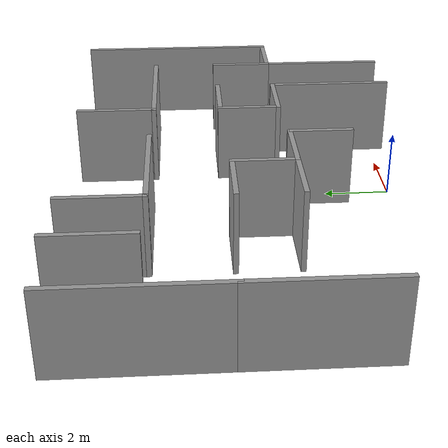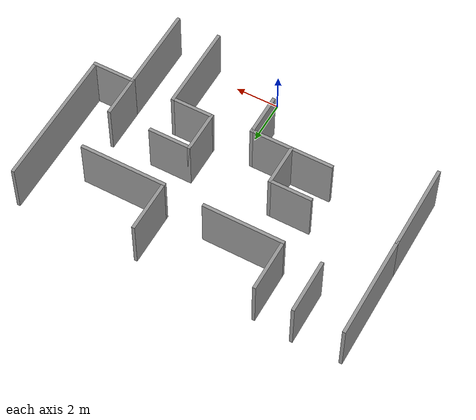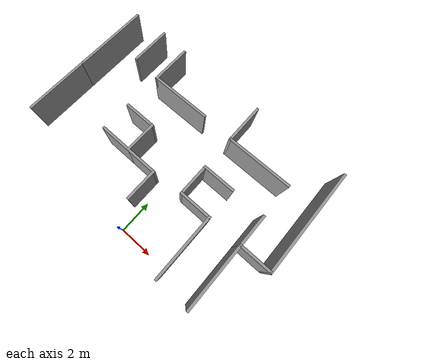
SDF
<sdf version="1.6">
 <model name="maze_new">
  <link name="Wall_104">
   <pose>-5.98541 8.7979 0 0 -0 1.5708</pose>
   <visual name="Wall_104_Visual">
    <pose>0 0 1.25 0 -0 0</pose>
    <geometry><box><size>2.5 0.15 2.5</size></box></geometry>
    <material>
     <script><uri>file://media/materials/scripts/gazebo.material</uri><name>Gazebo/Grey</name></script>
     <ambient>1 1 1 1</ambient>
     <diffuse>0.7 0.7 0.7 1</diffuse>
     <specular>0.01 0.01 0.01 1</specular>
     <emissive>0 0 0 1</emissive>
    </material>
   </visual>
   <collision name="Wall_104_Collision">
    <pose>0 0 1.25 0 -0 0</pose>
    <geometry><box><size>2.5 0.15 2.5</size></box></geometry>
    <surface>
     <friction>
      <ode><mu>1</mu><mu2>1</mu2><fdir1>0 0 0</fdir1><slip1>0</slip1><slip2>0</slip2></ode>
      <torsional>
       <coefficient>1</coefficient>
       <patch_radius>0</patch_radius>
       <surface_radius>0</surface_radius>
       <use_patch_radius>1</use_patch_radius>
       <ode><slip>0</slip></ode>
      </torsional>
     </friction>
     <bounce><restitution_coefficient>0</restitution_coefficient><threshold>1e+06</threshold></bounce>
     <contact>
      <collide_without_contact>0</collide_without_contact>
      <collide_without_contact_bitmask>1</collide_without_contact_bitmask>
      <collide_bitmask>1</collide_bitmask>
      <ode>
       <soft_cfm>0</soft_cfm>
       <soft_erp>0.2</soft_erp>
       <kp>1e+13</kp>
       <kd>1</kd>
       <max_vel>0.01</max_vel>
       <min_depth>0</min_depth>
      </ode>
      <bullet>
       <split_impulse>1</split_impulse>
       <split_impulse_penetration_threshold>-0.01</split_impulse_penetration_threshold>
       <soft_cfm>0</soft_cfm>
       <soft_erp>0.2</soft_erp>
       <kp>1e+13</kp>
       <kd>1</kd>
      </bullet>
     </contact>
    </surface>
   </collision>
  </link>
  <link name="Wall_107">
   <pose>-2.4 7.4771 0 0 -0 0</pose>
   <visual name="Wall_107_Visual">
    <pose>0 0 1.25 0 -0 0</pose>
    <geometry><box><size>3.75 0.15 2.5</size></box></geometry>
    <material>
     <script><uri>file://media/materials/scripts/gazebo.material</uri><name>Gazebo/Grey</name></script>
     <ambient>1 1 1 1</ambient>
     <diffuse>0.7 0.7 0.7 1</diffuse>
     <specular>0.01 0.01 0.01 1</specular>
     <emissive>0 0 0 1</emissive>
    </material>
   </visual>
   <collision name="Wall_107_Collision">
    <pose>0 0 1.25 0 -0 0</pose>
    <geometry><box><size>3.75 0.15 2.5</size></box></geometry>
    <surface>
     <friction>
      <ode><mu>1</mu><mu2>1</mu2><fdir1>0 0 0</fdir1><slip1>0</slip1><slip2>0</slip2></ode>
      <torsional>
       <coefficient>1</coefficient>
       <patch_radius>0</patch_radius>
       <surface_radius>0</surface_radius>
       <use_patch_radius>1</use_patch_radius>
       <ode><slip>0</slip></ode>
      </torsional>
     </friction>
     <bounce><restitution_coefficient>0</restitution_coefficient><threshold>1e+06</threshold></bounce>
     <contact>
      <collide_without_contact>0</collide_without_contact>
      <collide_without_contact_bitmask>1</collide_without_contact_bitmask>
      <collide_bitmask>1</collide_bitmask>
      <ode>
       <soft_cfm>0</soft_cfm>
       <soft_erp>0.2</soft_erp>
       <kp>1e+13</kp>
       <kd>1</kd>
       <max_vel>0.01</max_vel>
       <min_depth>0</min_depth>
      </ode>
      <bullet>
       <split_impulse>1</split_impulse>
       <split_impulse_penetration_threshold>-0.01</split_impulse_penetration_threshold>
       <soft_cfm>0</soft_cfm>
       <soft_erp>0.2</soft_erp>
       <kp>1e+13</kp>
       <kd>1</kd>
      </bullet>
     </contact>
    </surface>
   </collision>
  </link>
  <link name="Wall_110">
   <pose>-4.2 8.6521 0 0 -0 1.5708</pose>
   <visual name="Wall_110_Visual">
    <pose>0 0 1.25 0 -0 0</pose>
    <geometry><box><size>2.5 0.15 2.5</size></box></geometry>
    <material>
     <script><uri>file://media/materials/scripts/gazebo.material</uri><name>Gazebo/Grey</name></script>
     <ambient>1 1 1 1</ambient>
     <diffuse>0.7 0.7 0.7 1</diffuse>
     <specular>0.01 0.01 0.01 1</specular>
     <emissive>0 0 0 1</emissive>
    </material>
   </visual>
   <collision name="Wall_110_Collision">
    <pose>0 0 1.25 0 -0 0</pose>
    <geometry><box><size>2.5 0.15 2.5</size></box></geometry>
    <surface>
     <friction>
      <ode><mu>1</mu><mu2>1</mu2><fdir1>0 0 0</fdir1><slip1>0</slip1><slip2>0</slip2></ode>
      <torsional>
       <coefficient>1</coefficient>
       <patch_radius>0</patch_radius>
       <surface_radius>0</surface_radius>
       <use_patch_radius>1</use_patch_radius>
       <ode><slip>0</slip></ode>
      </torsional>
     </friction>
     <bounce><restitution_coefficient>0</restitution_coefficient><threshold>1e+06</threshold></bounce>
     <contact>
      <collide_without_contact>0</collide_without_contact>
      <collide_without_contact_bitmask>1</collide_without_contact_bitmask>
      <collide_bitmask>1</collide_bitmask>
      <ode>
       <soft_cfm>0</soft_cfm>
       <soft_erp>0.2</soft_erp>
       <kp>1e+13</kp>
       <kd>1</kd>
       <max_vel>0.01</max_vel>
       <min_depth>0</min_depth>
      </ode>
      <bullet>
       <split_impulse>1</split_impulse>
       <split_impulse_penetration_threshold>-0.01</split_impulse_penetration_threshold>
       <soft_cfm>0</soft_cfm>
       <soft_erp>0.2</soft_erp>
       <kp>1e+13</kp>
       <kd>1</kd>
      </bullet>
     </contact>
    </surface>
   </collision>
  </link>
  <link name="Wall_113">
   <pose>3.275 7.3771 0 0 -0 0</pose>
   <visual name="Wall_113_Visual">
    <pose>0 0 1.25 0 -0 0</pose>
    <geometry><box><size>4 0.15 2.5</size></box></geometry>
    <material>
     <script><uri>file://media/materials/scripts/gazebo.material</uri><name>Gazebo/Grey</name></script>
     <ambient>1 1 1 1</ambient>
     <diffuse>0.7 0.7 0.7 1</diffuse>
     <specular>0.01 0.01 0.01 1</specular>
     <emissive>0 0 0 1</emissive>
    </material>
   </visual>
   <collision name="Wall_113_Collision">
    <pose>0 0 1.25 0 -0 0</pose>
    <geometry><box><size>4 0.15 2.5</size></box></geometry>
    <surface>
     <friction>
      <ode><mu>1</mu><mu2>1</mu2><fdir1>0 0 0</fdir1><slip1>0</slip1><slip2>0</slip2></ode>
      <torsional>
       <coefficient>1</coefficient>
       <patch_radius>0</patch_radius>
       <surface_radius>0</surface_radius>
       <use_patch_radius>1</use_patch_radius>
       <ode><slip>0</slip></ode>
      </torsional>
     </friction>
     <bounce><restitution_coefficient>0</restitution_coefficient><threshold>1e+06</threshold></bounce>
     <contact>
      <collide_without_contact>0</collide_without_contact>
      <collide_without_contact_bitmask>1</collide_without_contact_bitmask>
      <collide_bitmask>1</collide_bitmask>
      <ode>
       <soft_cfm>0</soft_cfm>
       <soft_erp>0.2</soft_erp>
       <kp>1e+13</kp>
       <kd>1</kd>
       <max_vel>0.01</max_vel>
       <min_depth>0</min_depth>
      </ode>
      <bullet>
       <split_impulse>1</split_impulse>
       <split_impulse_penetration_threshold>-0.01</split_impulse_penetration_threshold>
       <soft_cfm>0</soft_cfm>
       <soft_erp>0.2</soft_erp>
       <kp>1e+13</kp>
       <kd>1</kd>
      </bullet>
     </contact>
    </surface>
   </collision>
  </link>
  <link name="Wall_115">
   <pose>1.35 8.5521 0 0 -0 1.5708</pose>
   <visual name="Wall_115_Visual">
    <pose>0 0 1.25 0 -0 0</pose>
    <geometry><box><size>2.5 0.15 2.5</size></box></geometry>
    <material>
     <script><uri>file://media/materials/scripts/gazebo.material</uri><name>Gazebo/Grey</name></script>
     <ambient>1 1 1 1</ambient>
     <diffuse>0.7 0.7 0.7 1</diffuse>
     <specular>0.01 0.01 0.01 1</specular>
     <emissive>0 0 0 1</emissive>
    </material>
   </visual>
   <collision name="Wall_115_Collision">
    <pose>0 0 1.25 0 -0 0</pose>
    <geometry><box><size>2.5 0.15 2.5</size></box></geometry>
    <surface>
     <friction>
      <ode><mu>1</mu><mu2>1</mu2><fdir1>0 0 0</fdir1><slip1>0</slip1><slip2>0</slip2></ode>
      <torsional>
       <coefficient>1</coefficient>
       <patch_radius>0</patch_radius>
       <surface_radius>0</surface_radius>
       <use_patch_radius>1</use_patch_radius>
       <ode><slip>0</slip></ode>
      </torsional>
     </friction>
     <bounce><restitution_coefficient>0</restitution_coefficient><threshold>1e+06</threshold></bounce>
     <contact>
      <collide_without_contact>0</collide_without_contact>
      <collide_without_contact_bitmask>1</collide_without_contact_bitmask>
      <collide_bitmask>1</collide_bitmask>
      <ode>
       <soft_cfm>0</soft_cfm>
       <soft_erp>0.2</soft_erp>
       <kp>1e+13</kp>
       <kd>1</kd>
       <max_vel>0.01</max_vel>
       <min_depth>0</min_depth>
      </ode>
      <bullet>
       <split_impulse>1</split_impulse>
       <split_impulse_penetration_threshold>-0.01</split_impulse_penetration_threshold>
       <soft_cfm>0</soft_cfm>
       <soft_erp>0.2</soft_erp>
       <kp>1e+13</kp>
       <kd>1</kd>
      </bullet>
     </contact>
    </surface>
   </collision>
  </link>
  <link name="Wall_118">
   <pose>5.2 4.3521 0 0 0 -1.5708</pose>
   <visual name="Wall_118_Visual">
    <pose>0 0 1.25 0 -0 0</pose>
    <geometry><box><size>2 0.15 2.5</size></box></geometry>
    <material>
     <script><uri>file://media/materials/scripts/gazebo.material</uri><name>Gazebo/Grey</name></script>
     <ambient>1 1 1 1</ambient>
     <diffuse>0.7 0.7 0.7 1</diffuse>
     <specular>0.01 0.01 0.01 1</specular>
     <emissive>0 0 0 1</emissive>
    </material>
   </visual>
   <collision name="Wall_118_Collision">
    <pose>0 0 1.25 0 -0 0</pose>
    <geometry><box><size>2 0.15 2.5</size></box></geometry>
    <surface>
     <friction>
      <ode><mu>1</mu><mu2>1</mu2><fdir1>0 0 0</fdir1><slip1>0</slip1><slip2>0</slip2></ode>
      <torsional>
       <coefficient>1</coefficient>
       <patch_radius>0</patch_radius>
       <surface_radius>0</surface_radius>
       <use_patch_radius>1</use_patch_radius>
       <ode><slip>0</slip></ode>
      </torsional>
     </friction>
     <bounce><restitution_coefficient>0</restitution_coefficient><threshold>1e+06</threshold></bounce>
     <contact>
      <collide_without_contact>0</collide_without_contact>
      <collide_without_contact_bitmask>1</collide_without_contact_bitmask>
      <collide_bitmask>1</collide_bitmask>
      <ode>
       <soft_cfm>0</soft_cfm>
       <soft_erp>0.2</soft_erp>
       <kp>1e+13</kp>
       <kd>1</kd>
       <max_vel>0.01</max_vel>
       <min_depth>0</min_depth>
      </ode>
      <bullet>
       <split_impulse>1</split_impulse>
       <split_impulse_penetration_threshold>-0.01</split_impulse_penetration_threshold>
       <soft_cfm>0</soft_cfm>
       <soft_erp>0.2</soft_erp>
       <kp>1e+13</kp>
       <kd>1</kd>
      </bullet>
     </contact>
    </surface>
   </collision>
  </link>
  <link name="Wall_119">
   <pose>6.125 3.4271 0 0 -0 0</pose>
   <visual name="Wall_119_Visual">
    <pose>0 0 1.25 0 -0 0</pose>
    <geometry><box><size>2 0.15 2.5</size></box></geometry>
    <material>
     <script><uri>file://media/materials/scripts/gazebo.material</uri><name>Gazebo/Grey</name></script>
     <ambient>1 1 1 1</ambient>
     <diffuse>0.7 0.7 0.7 1</diffuse>
     <specular>0.01 0.01 0.01 1</specular>
     <emissive>0 0 0 1</emissive>
    </material>
   </visual>
   <collision name="Wall_119_Collision">
    <pose>0 0 1.25 0 -0 0</pose>
    <geometry><box><size>2 0.15 2.5</size></box></geometry>
    <surface>
     <friction>
      <ode><mu>1</mu><mu2>1</mu2><fdir1>0 0 0</fdir1><slip1>0</slip1><slip2>0</slip2></ode>
      <torsional>
       <coefficient>1</coefficient>
       <patch_radius>0</patch_radius>
       <surface_radius>0</surface_radius>
       <use_patch_radius>1</use_patch_radius>
       <ode><slip>0</slip></ode>
      </torsional>
     </friction>
     <bounce><restitution_coefficient>0</restitution_coefficient><threshold>1e+06</threshold></bounce>
     <contact>
      <collide_without_contact>0</collide_without_contact>
      <collide_without_contact_bitmask>1</collide_without_contact_bitmask>
      <collide_bitmask>1</collide_bitmask>
      <ode>
       <soft_cfm>0</soft_cfm>
       <soft_erp>0.2</soft_erp>
       <kp>1e+13</kp>
       <kd>1</kd>
       <max_vel>0.01</max_vel>
       <min_depth>0</min_depth>
      </ode>
      <bullet>
       <split_impulse>1</split_impulse>
       <split_impulse_penetration_threshold>-0.01</split_impulse_penetration_threshold>
       <soft_cfm>0</soft_cfm>
       <soft_erp>0.2</soft_erp>
       <kp>1e+13</kp>
       <kd>1</kd>
      </bullet>
     </contact>
    </surface>
   </collision>
  </link>
  <link name="Wall_120">
   <pose>7.05 6.6021 0 0 -0 1.5708</pose>
   <visual name="Wall_120_Visual">
    <pose>0 0 1.25 0 -0 0</pose>
    <geometry><box><size>6.5 0.15 2.5</size></box></geometry>
    <material>
     <script><uri>file://media/materials/scripts/gazebo.material</uri><name>Gazebo/Grey</name></script>
     <ambient>1 1 1 1</ambient>
     <diffuse>0.7 0.7 0.7 1</diffuse>
     <specular>0.01 0.01 0.01 1</specular>
     <emissive>0 0 0 1</emissive>
    </material>
   </visual>
   <collision name="Wall_120_Collision">
    <pose>0 0 1.25 0 -0 0</pose>
    <geometry><box><size>6.5 0.15 2.5</size></box></geometry>
    <surface>
     <friction>
      <ode><mu>1</mu><mu2>1</mu2><fdir1>0 0 0</fdir1><slip1>0</slip1><slip2>0</slip2></ode>
      <torsional>
       <coefficient>1</coefficient>
       <patch_radius>0</patch_radius>
       <surface_radius>0</surface_radius>
       <use_patch_radius>1</use_patch_radius>
       <ode><slip>0</slip></ode>
      </torsional>
     </friction>
     <bounce><restitution_coefficient>0</restitution_coefficient><threshold>1e+06</threshold></bounce>
     <contact>
      <collide_without_contact>0</collide_without_contact>
      <collide_without_contact_bitmask>1</collide_without_contact_bitmask>
      <collide_bitmask>1</collide_bitmask>
      <ode>
       <soft_cfm>0</soft_cfm>
       <soft_erp>0.2</soft_erp>
       <kp>1e+13</kp>
       <kd>1</kd>
       <max_vel>0.01</max_vel>
       <min_depth>0</min_depth>
      </ode>
      <bullet>
       <split_impulse>1</split_impulse>
       <split_impulse_penetration_threshold>-0.01</split_impulse_penetration_threshold>
       <soft_cfm>0</soft_cfm>
       <soft_erp>0.2</soft_erp>
       <kp>1e+13</kp>
       <kd>1</kd>
      </bullet>
     </contact>
    </surface>
   </collision>
  </link>
  <link name="Wall_122">
   <pose>5.2 1.5021 0 0 0 -1.5708</pose>
   <visual name="Wall_122_Visual">
    <pose>0 0 1.25 0 -0 0</pose>
    <geometry><box><size>4 0.15 2.5</size></box></geometry>
    <material>
     <script><uri>file://media/materials/scripts/gazebo.material</uri><name>Gazebo/Grey</name></script>
     <ambient>1 1 1 1</ambient>
     <diffuse>0.7 0.7 0.7 1</diffuse>
     <specular>0.01 0.01 0.01 1</specular>
     <emissive>0 0 0 1</emissive>
    </material>
   </visual>
   <collision name="Wall_122_Collision">
    <pose>0 0 1.25 0 -0 0</pose>
    <geometry><box><size>4 0.15 2.5</size></box></geometry>
    <surface>
     <friction>
      <ode><mu>1</mu><mu2>1</mu2><fdir1>0 0 0</fdir1><slip1>0</slip1><slip2>0</slip2></ode>
      <torsional>
       <coefficient>1</coefficient>
       <patch_radius>0</patch_radius>
       <surface_radius>0</surface_radius>
       <use_patch_radius>1</use_patch_radius>
       <ode><slip>0</slip></ode>
      </torsional>
     </friction>
     <bounce><restitution_coefficient>0</restitution_coefficient><threshold>1e+06</threshold></bounce>
     <contact>
      <collide_without_contact>0</collide_without_contact>
      <collide_without_contact_bitmask>1</collide_without_contact_bitmask>
      <collide_bitmask>1</collide_bitmask>
      <ode>
       <soft_cfm>0</soft_cfm>
       <soft_erp>0.2</soft_erp>
       <kp>1e+13</kp>
       <kd>1</kd>
       <max_vel>0.01</max_vel>
       <min_depth>0</min_depth>
      </ode>
      <bullet>
       <split_impulse>1</split_impulse>
       <split_impulse_penetration_threshold>-0.01</split_impulse_penetration_threshold>
       <soft_cfm>0</soft_cfm>
       <soft_erp>0.2</soft_erp>
       <kp>1e+13</kp>
       <kd>1</kd>
      </bullet>
     </contact>
    </surface>
   </collision>
  </link>
  <link name="Wall_78">
   <pose>-0.5 2.3521 0 0 -0 1.5708</pose>
   <visual name="Wall_78_Visual">
    <pose>0 0 1.25 0 -0 0</pose>
    <geometry><box><size>2 0.15 2.5</size></box></geometry>
    <material>
     <script><uri>file://media/materials/scripts/gazebo.material</uri><name>Gazebo/Grey</name></script>
     <ambient>1 1 1 1</ambient>
     <diffuse>0.7 0.7 0.7 1</diffuse>
     <specular>0.01 0.01 0.01 1</specular>
     <emissive>0 0 0 1</emissive>
    </material>
   </visual>
   <collision name="Wall_78_Collision">
    <pose>0 0 1.25 0 -0 0</pose>
    <geometry><box><size>2 0.15 2.5</size></box></geometry>
    <surface>
     <friction>
      <ode><mu>1</mu><mu2>1</mu2><fdir1>0 0 0</fdir1><slip1>0</slip1><slip2>0</slip2></ode>
      <torsional>
       <coefficient>1</coefficient>
       <patch_radius>0</patch_radius>
       <surface_radius>0</surface_radius>
       <use_patch_radius>1</use_patch_radius>
       <ode><slip>0</slip></ode>
      </torsional>
     </friction>
     <bounce><restitution_coefficient>0</restitution_coefficient><threshold>1e+06</threshold></bounce>
     <contact>
      <collide_without_contact>0</collide_without_contact>
      <collide_without_contact_bitmask>1</collide_without_contact_bitmask>
      <collide_bitmask>1</collide_bitmask>
      <ode>
       <soft_cfm>0</soft_cfm>
       <soft_erp>0.2</soft_erp>
       <kp>1e+13</kp>
       <kd>1</kd>
       <max_vel>0.01</max_vel>
       <min_depth>0</min_depth>
      </ode>
      <bullet>
       <split_impulse>1</split_impulse>
       <split_impulse_penetration_threshold>-0.01</split_impulse_penetration_threshold>
       <soft_cfm>0</soft_cfm>
       <soft_erp>0.2</soft_erp>
       <kp>1e+13</kp>
       <kd>1</kd>
      </bullet>
     </contact>
    </surface>
   </collision>
  </link>
  <link name="Wall_79">
   <pose>-1.425 3.2771 0 0 -0 3.14159</pose>
   <visual name="Wall_79_Visual">
    <pose>0 0 1.25 0 -0 0</pose>
    <geometry><box><size>2 0.15 2.5</size></box></geometry>
    <material>
     <script><uri>file://media/materials/scripts/gazebo.material</uri><name>Gazebo/Grey</name></script>
     <ambient>1 1 1 1</ambient>
     <diffuse>0.7 0.7 0.7 1</diffuse>
     <specular>0.01 0.01 0.01 1</specular>
     <emissive>0 0 0 1</emissive>
    </material>
   </visual>
   <collision name="Wall_79_Collision">
    <pose>0 0 1.25 0 -0 0</pose>
    <geometry><box><size>2 0.15 2.5</size></box></geometry>
    <surface>
     <friction>
      <ode><mu>1</mu><mu2>1</mu2><fdir1>0 0 0</fdir1><slip1>0</slip1><slip2>0</slip2></ode>
      <torsional>
       <coefficient>1</coefficient>
       <patch_radius>0</patch_radius>
       <surface_radius>0</surface_radius>
       <use_patch_radius>1</use_patch_radius>
       <ode><slip>0</slip></ode>
      </torsional>
     </friction>
     <bounce><restitution_coefficient>0</restitution_coefficient><threshold>1e+06</threshold></bounce>
     <contact>
      <collide_without_contact>0</collide_without_contact>
      <collide_without_contact_bitmask>1</collide_without_contact_bitmask>
      <collide_bitmask>1</collide_bitmask>
      <ode>
       <soft_cfm>0</soft_cfm>
       <soft_erp>0.2</soft_erp>
       <kp>1e+13</kp>
       <kd>1</kd>
       <max_vel>0.01</max_vel>
       <min_depth>0</min_depth>
      </ode>
      <bullet>
       <split_impulse>1</split_impulse>
       <split_impulse_penetration_threshold>-0.01</split_impulse_penetration_threshold>
       <soft_cfm>0</soft_cfm>
       <soft_erp>0.2</soft_erp>
       <kp>1e+13</kp>
       <kd>1</kd>
      </bullet>
     </contact>
    </surface>
   </collision>
  </link>
  <link name="Wall_80">
   <pose>-2.35 4.2021 0 0 -0 1.5708</pose>
   <visual name="Wall_80_Visual">
    <pose>0 0 1.25 0 -0 0</pose>
    <geometry><box><size>2 0.15 2.5</size></box></geometry>
    <material>
     <script><uri>file://media/materials/scripts/gazebo.material</uri><name>Gazebo/Grey</name></script>
     <ambient>1 1 1 1</ambient>
     <diffuse>0.7 0.7 0.7 1</diffuse>
     <specular>0.01 0.01 0.01 1</specular>
     <emissive>0 0 0 1</emissive>
    </material>
   </visual>
   <collision name="Wall_80_Collision">
    <pose>0 0 1.25 0 -0 0</pose>
    <geometry><box><size>2 0.15 2.5</size></box></geometry>
    <surface>
     <friction>
      <ode><mu>1</mu><mu2>1</mu2><fdir1>0 0 0</fdir1><slip1>0</slip1><slip2>0</slip2></ode>
      <torsional>
       <coefficient>1</coefficient>
       <patch_radius>0</patch_radius>
       <surface_radius>0</surface_radius>
       <use_patch_radius>1</use_patch_radius>
       <ode><slip>0</slip></ode>
      </torsional>
     </friction>
     <bounce><restitution_coefficient>0</restitution_coefficient><threshold>1e+06</threshold></bounce>
     <contact>
      <collide_without_contact>0</collide_without_contact>
      <collide_without_contact_bitmask>1</collide_without_contact_bitmask>
      <collide_bitmask>1</collide_bitmask>
      <ode>
       <soft_cfm>0</soft_cfm>
       <soft_erp>0.2</soft_erp>
       <kp>1e+13</kp>
       <kd>1</kd>
       <max_vel>0.01</max_vel>
       <min_depth>0</min_depth>
      </ode>
      <bullet>
       <split_impulse>1</split_impulse>
       <split_impulse_penetration_threshold>-0.01</split_impulse_penetration_threshold>
       <soft_cfm>0</soft_cfm>
       <soft_erp>0.2</soft_erp>
       <kp>1e+13</kp>
       <kd>1</kd>
      </bullet>
     </contact>
    </surface>
   </collision>
  </link>
  <link name="Wall_81">
   <pose>-3.275 5.1271 0 0 -0 3.14159</pose>
   <visual name="Wall_81_Visual">
    <pose>0 0 1.25 0 -0 0</pose>
    <geometry><box><size>2 0.15 2.5</size></box></geometry>
    <material>
     <script><uri>file://media/materials/scripts/gazebo.material</uri><name>Gazebo/Grey</name></script>
     <ambient>1 1 1 1</ambient>
     <diffuse>0.7 0.7 0.7 1</diffuse>
     <specular>0.01 0.01 0.01 1</specular>
     <emissive>0 0 0 1</emissive>
    </material>
   </visual>
   <collision name="Wall_81_Collision">
    <pose>0 0 1.25 0 -0 0</pose>
    <geometry><box><size>2 0.15 2.5</size></box></geometry>
    <surface>
     <friction>
      <ode><mu>1</mu><mu2>1</mu2><fdir1>0 0 0</fdir1><slip1>0</slip1><slip2>0</slip2></ode>
      <torsional>
       <coefficient>1</coefficient>
       <patch_radius>0</patch_radius>
       <surface_radius>0</surface_radius>
       <use_patch_radius>1</use_patch_radius>
       <ode><slip>0</slip></ode>
      </torsional>
     </friction>
     <bounce><restitution_coefficient>0</restitution_coefficient><threshold>1e+06</threshold></bounce>
     <contact>
      <collide_without_contact>0</collide_without_contact>
      <collide_without_contact_bitmask>1</collide_without_contact_bitmask>
      <collide_bitmask>1</collide_bitmask>
      <ode>
       <soft_cfm>0</soft_cfm>
       <soft_erp>0.2</soft_erp>
       <kp>1e+13</kp>
       <kd>1</kd>
       <max_vel>0.01</max_vel>
       <min_depth>0</min_depth>
      </ode>
      <bullet>
       <split_impulse>1</split_impulse>
       <split_impulse_penetration_threshold>-0.01</split_impulse_penetration_threshold>
       <soft_cfm>0</soft_cfm>
       <soft_erp>0.2</soft_erp>
       <kp>1e+13</kp>
       <kd>1</kd>
      </bullet>
     </contact>
    </surface>
   </collision>
  </link>
  <link name="Wall_83">
   <pose>-3.275 3.2771 0 0 -0 3.14159</pose>
   <visual name="Wall_83_Visual">
    <pose>0 0 1.25 0 -0 0</pose>
    <geometry><box><size>2 0.15 2.5</size></box></geometry>
    <material>
     <script><uri>file://media/materials/scripts/gazebo.material</uri><name>Gazebo/Grey</name></script>
     <ambient>1 1 1 1</ambient>
     <diffuse>0.7 0.7 0.7 1</diffuse>
     <specular>0.01 0.01 0.01 1</specular>
     <emissive>0 0 0 1</emissive>
    </material>
   </visual>
   <collision name="Wall_83_Collision">
    <pose>0 0 1.25 0 -0 0</pose>
    <geometry><box><size>2 0.15 2.5</size></box></geometry>
    <surface>
     <friction>
      <ode><mu>1</mu><mu2>1</mu2><fdir1>0 0 0</fdir1><slip1>0</slip1><slip2>0</slip2></ode>
      <torsional>
       <coefficient>1</coefficient>
       <patch_radius>0</patch_radius>
       <surface_radius>0</surface_radius>
       <use_patch_radius>1</use_patch_radius>
       <ode><slip>0</slip></ode>
      </torsional>
     </friction>
     <bounce><restitution_coefficient>0</restitution_coefficient><threshold>1e+06</threshold></bounce>
     <contact>
      <collide_without_contact>0</collide_without_contact>
      <collide_without_contact_bitmask>1</collide_without_contact_bitmask>
      <collide_bitmask>1</collide_bitmask>
      <ode>
       <soft_cfm>0</soft_cfm>
       <soft_erp>0.2</soft_erp>
       <kp>1e+13</kp>
       <kd>1</kd>
       <max_vel>0.01</max_vel>
       <min_depth>0</min_depth>
      </ode>
      <bullet>
       <split_impulse>1</split_impulse>
       <split_impulse_penetration_threshold>-0.01</split_impulse_penetration_threshold>
       <soft_cfm>0</soft_cfm>
       <soft_erp>0.2</soft_erp>
       <kp>1e+13</kp>
       <kd>1</kd>
      </bullet>
     </contact>
    </surface>
   </collision>
  </link>
  <link name="Wall_87">
   <pose>3.2 1.5021 0 0 -0 1.5708</pose>
   <visual name="Wall_87_Visual">
    <pose>0 0 1.25 0 -0 0</pose>
    <geometry><box><size>4 0.15 2.5</size></box></geometry>
    <material>
     <script><uri>file://media/materials/scripts/gazebo.material</uri><name>Gazebo/Grey</name></script>
     <ambient>1 1 1 1</ambient>
     <diffuse>0.7 0.7 0.7 1</diffuse>
     <specular>0.01 0.01 0.01 1</specular>
     <emissive>0 0 0 1</emissive>
    </material>
   </visual>
   <collision name="Wall_87_Collision">
    <pose>0 0 1.25 0 -0 0</pose>
    <geometry><box><size>4 0.15 2.5</size></box></geometry>
    <surface>
     <friction>
      <ode><mu>1</mu><mu2>1</mu2><fdir1>0 0 0</fdir1><slip1>0</slip1><slip2>0</slip2></ode>
      <torsional>
       <coefficient>1</coefficient>
       <patch_radius>0</patch_radius>
       <surface_radius>0</surface_radius>
       <use_patch_radius>1</use_patch_radius>
       <ode><slip>0</slip></ode>
      </torsional>
     </friction>
     <bounce><restitution_coefficient>0</restitution_coefficient><threshold>1e+06</threshold></bounce>
     <contact>
      <collide_without_contact>0</collide_without_contact>
      <collide_without_contact_bitmask>1</collide_without_contact_bitmask>
      <collide_bitmask>1</collide_bitmask>
      <ode>
       <soft_cfm>0</soft_cfm>
       <soft_erp>0.2</soft_erp>
       <kp>1e+13</kp>
       <kd>1</kd>
       <max_vel>0.01</max_vel>
       <min_depth>0</min_depth>
      </ode>
      <bullet>
       <split_impulse>1</split_impulse>
       <split_impulse_penetration_threshold>-0.01</split_impulse_penetration_threshold>
       <soft_cfm>0</soft_cfm>
       <soft_erp>0.2</soft_erp>
       <kp>1e+13</kp>
       <kd>1</kd>
      </bullet>
     </contact>
    </surface>
   </collision>
  </link>
  <link name="Wall_88">
   <pose>2.275 3.4271 0 0 -0 3.14159</pose>
   <visual name="Wall_88_Visual">
    <pose>0 0 1.25 0 -0 0</pose>
    <geometry><box><size>2 0.15 2.5</size></box></geometry>
    <material>
     <script><uri>file://media/materials/scripts/gazebo.material</uri><name>Gazebo/Grey</name></script>
     <ambient>1 1 1 1</ambient>
     <diffuse>0.7 0.7 0.7 1</diffuse>
     <specular>0.01 0.01 0.01 1</specular>
     <emissive>0 0 0 1</emissive>
    </material>
   </visual>
   <collision name="Wall_88_Collision">
    <pose>0 0 1.25 0 -0 0</pose>
    <geometry><box><size>2 0.15 2.5</size></box></geometry>
    <surface>
     <friction>
      <ode><mu>1</mu><mu2>1</mu2><fdir1>0 0 0</fdir1><slip1>0</slip1><slip2>0</slip2></ode>
      <torsional>
       <coefficient>1</coefficient>
       <patch_radius>0</patch_radius>
       <surface_radius>0</surface_radius>
       <use_patch_radius>1</use_patch_radius>
       <ode><slip>0</slip></ode>
      </torsional>
     </friction>
     <bounce><restitution_coefficient>0</restitution_coefficient><threshold>1e+06</threshold></bounce>
     <contact>
      <collide_without_contact>0</collide_without_contact>
      <collide_without_contact_bitmask>1</collide_without_contact_bitmask>
      <collide_bitmask>1</collide_bitmask>
      <ode>
       <soft_cfm>0</soft_cfm>
       <soft_erp>0.2</soft_erp>
       <kp>1e+13</kp>
       <kd>1</kd>
       <max_vel>0.01</max_vel>
       <min_depth>0</min_depth>
      </ode>
      <bullet>
       <split_impulse>1</split_impulse>
       <split_impulse_penetration_threshold>-0.01</split_impulse_penetration_threshold>
       <soft_cfm>0</soft_cfm>
       <soft_erp>0.2</soft_erp>
       <kp>1e+13</kp>
       <kd>1</kd>
      </bullet>
     </contact>
    </surface>
   </collision>
  </link>
  <link name="Wall_89">
   <pose>1.35 4.3521 0 0 -0 1.5708</pose>
   <visual name="Wall_89_Visual">
    <pose>0 0 1.25 0 -0 0</pose>
    <geometry><box><size>2 0.15 2.5</size></box></geometry>
    <material>
     <script><uri>file://media/materials/scripts/gazebo.material</uri><name>Gazebo/Grey</name></script>
     <ambient>1 1 1 1</ambient>
     <diffuse>0.7 0.7 0.7 1</diffuse>
     <specular>0.01 0.01 0.01 1</specular>
     <emissive>0 0 0 1</emissive>
    </material>
   </visual>
   <collision name="Wall_89_Collision">
    <pose>0 0 1.25 0 -0 0</pose>
    <geometry><box><size>2 0.15 2.5</size></box></geometry>
    <surface>
     <friction>
      <ode><mu>1</mu><mu2>1</mu2><fdir1>0 0 0</fdir1><slip1>0</slip1><slip2>0</slip2></ode>
      <torsional>
       <coefficient>1</coefficient>
       <patch_radius>0</patch_radius>
       <surface_radius>0</surface_radius>
       <use_patch_radius>1</use_patch_radius>
       <ode><slip>0</slip></ode>
      </torsional>
     </friction>
     <bounce><restitution_coefficient>0</restitution_coefficient><threshold>1e+06</threshold></bounce>
     <contact>
      <collide_without_contact>0</collide_without_contact>
      <collide_without_contact_bitmask>1</collide_without_contact_bitmask>
      <collide_bitmask>1</collide_bitmask>
      <ode>
       <soft_cfm>0</soft_cfm>
       <soft_erp>0.2</soft_erp>
       <kp>1e+13</kp>
       <kd>1</kd>
       <max_vel>0.01</max_vel>
       <min_depth>0</min_depth>
      </ode>
      <bullet>
       <split_impulse>1</split_impulse>
       <split_impulse_penetration_threshold>-0.01</split_impulse_penetration_threshold>
       <soft_cfm>0</soft_cfm>
       <soft_erp>0.2</soft_erp>
       <kp>1e+13</kp>
       <kd>1</kd>
      </bullet>
     </contact>
    </surface>
   </collision>
  </link>
  <link name="Wall_90">
   <pose>2.275 5.2771 0 0 -0 0</pose>
   <visual name="Wall_90_Visual">
    <pose>0 0 1.25 0 -0 0</pose>
    <geometry><box><size>2 0.15 2.5</size></box></geometry>
    <material>
     <script><uri>file://media/materials/scripts/gazebo.material</uri><name>Gazebo/Grey</name></script>
     <ambient>1 1 1 1</ambient>
     <diffuse>0.7 0.7 0.7 1</diffuse>
     <specular>0.01 0.01 0.01 1</specular>
     <emissive>0 0 0 1</emissive>
    </material>
   </visual>
   <collision name="Wall_90_Collision">
    <pose>0 0 1.25 0 -0 0</pose>
    <geometry><box><size>2 0.15 2.5</size></box></geometry>
    <surface>
     <friction>
      <ode><mu>1</mu><mu2>1</mu2><fdir1>0 0 0</fdir1><slip1>0</slip1><slip2>0</slip2></ode>
      <torsional>
       <coefficient>1</coefficient>
       <patch_radius>0</patch_radius>
       <surface_radius>0</surface_radius>
       <use_patch_radius>1</use_patch_radius>
       <ode><slip>0</slip></ode>
      </torsional>
     </friction>
     <bounce><restitution_coefficient>0</restitution_coefficient><threshold>1e+06</threshold></bounce>
     <contact>
      <collide_without_contact>0</collide_without_contact>
      <collide_without_contact_bitmask>1</collide_without_contact_bitmask>
      <collide_bitmask>1</collide_bitmask>
      <ode>
       <soft_cfm>0</soft_cfm>
       <soft_erp>0.2</soft_erp>
       <kp>1e+13</kp>
       <kd>1</kd>
       <max_vel>0.01</max_vel>
       <min_depth>0</min_depth>
      </ode>
      <bullet>
       <split_impulse>1</split_impulse>
       <split_impulse_penetration_threshold>-0.01</split_impulse_penetration_threshold>
       <soft_cfm>0</soft_cfm>
       <soft_erp>0.2</soft_erp>
       <kp>1e+13</kp>
       <kd>1</kd>
      </bullet>
     </contact>
    </surface>
   </collision>
  </link>
  <link name="Wall_96">
   <pose>-8.15 3.3521 0 0 -0 1.5708</pose>
   <visual name="Wall_96_Visual">
    <pose>0 0 1.25 0 -0 0</pose>
    <geometry><box><size>4 0.15 2.5</size></box></geometry>
    <material>
     <script><uri>file://media/materials/scripts/gazebo.material</uri><name>Gazebo/Grey</name></script>
     <ambient>1 1 1 1</ambient>
     <diffuse>0.7 0.7 0.7 1</diffuse>
     <specular>0.01 0.01 0.01 1</specular>
     <emissive>0 0 0 1</emissive>
    </material>
   </visual>
   <collision name="Wall_96_Collision">
    <pose>0 0 1.25 0 -0 0</pose>
    <geometry><box><size>4 0.15 2.5</size></box></geometry>
    <surface>
     <friction>
      <ode><mu>1</mu><mu2>1</mu2><fdir1>0 0 0</fdir1><slip1>0</slip1><slip2>0</slip2></ode>
      <torsional>
       <coefficient>1</coefficient>
       <patch_radius>0</patch_radius>
       <surface_radius>0</surface_radius>
       <use_patch_radius>1</use_patch_radius>
       <ode><slip>0</slip></ode>
      </torsional>
     </friction>
     <bounce><restitution_coefficient>0</restitution_coefficient><threshold>1e+06</threshold></bounce>
     <contact>
      <collide_without_contact>0</collide_without_contact>
      <collide_without_contact_bitmask>1</collide_without_contact_bitmask>
      <collide_bitmask>1</collide_bitmask>
      <ode>
       <soft_cfm>0</soft_cfm>
       <soft_erp>0.2</soft_erp>
       <kp>1e+13</kp>
       <kd>1</kd>
       <max_vel>0.01</max_vel>
       <min_depth>0</min_depth>
      </ode>
      <bullet>
       <split_impulse>1</split_impulse>
       <split_impulse_penetration_threshold>-0.01</split_impulse_penetration_threshold>
       <soft_cfm>0</soft_cfm>
       <soft_erp>0.2</soft_erp>
       <kp>1e+13</kp>
       <kd>1</kd>
      </bullet>
     </contact>
    </surface>
   </collision>
  </link>
  <link name="Wall_99">
   <pose>-8.15 7.5771 0 0 -0 1.5708</pose>
   <visual name="Wall_99_Visual">
    <pose>0 0 1.25 0 -0 0</pose>
    <geometry><box><size>4.75 0.15 2.5</size></box></geometry>
    <material>
     <script><uri>file://media/materials/scripts/gazebo.material</uri><name>Gazebo/Grey</name></script>
     <ambient>1 1 1 1</ambient>
     <diffuse>0.7 0.7 0.7 1</diffuse>
     <specular>0.01 0.01 0.01 1</specular>
     <emissive>0 0 0 1</emissive>
    </material>
   </visual>
   <collision name="Wall_99_Collision">
    <pose>0 0 1.25 0 -0 0</pose>
    <geometry><box><size>4.75 0.15 2.5</size></box></geometry>
    <surface>
     <friction>
      <ode><mu>1</mu><mu2>1</mu2><fdir1>0 0 0</fdir1><slip1>0</slip1><slip2>0</slip2></ode>
      <torsional>
       <coefficient>1</coefficient>
       <patch_radius>0</patch_radius>
       <surface_radius>0</surface_radius>
       <use_patch_radius>1</use_patch_radius>
       <ode><slip>0</slip></ode>
      </torsional>
     </friction>
     <bounce><restitution_coefficient>0</restitution_coefficient><threshold>1e+06</threshold></bounce>
     <contact>
      <collide_without_contact>0</collide_without_contact>
      <collide_without_contact_bitmask>1</collide_without_contact_bitmask>
      <collide_bitmask>1</collide_bitmask>
      <ode>
       <soft_cfm>0</soft_cfm>
       <soft_erp>0.2</soft_erp>
       <kp>1e+13</kp>
       <kd>1</kd>
       <max_vel>0.01</max_vel>
       <min_depth>0</min_depth>
      </ode>
      <bullet>
       <split_impulse>1</split_impulse>
       <split_impulse_penetration_threshold>-0.01</split_impulse_penetration_threshold>
       <soft_cfm>0</soft_cfm>
       <soft_erp>0.2</soft_erp>
       <kp>1e+13</kp>
       <kd>1</kd>
      </bullet>
     </contact>
    </surface>
   </collision>
  </link>
  <static>1</static>
 </model>
</sdf>
